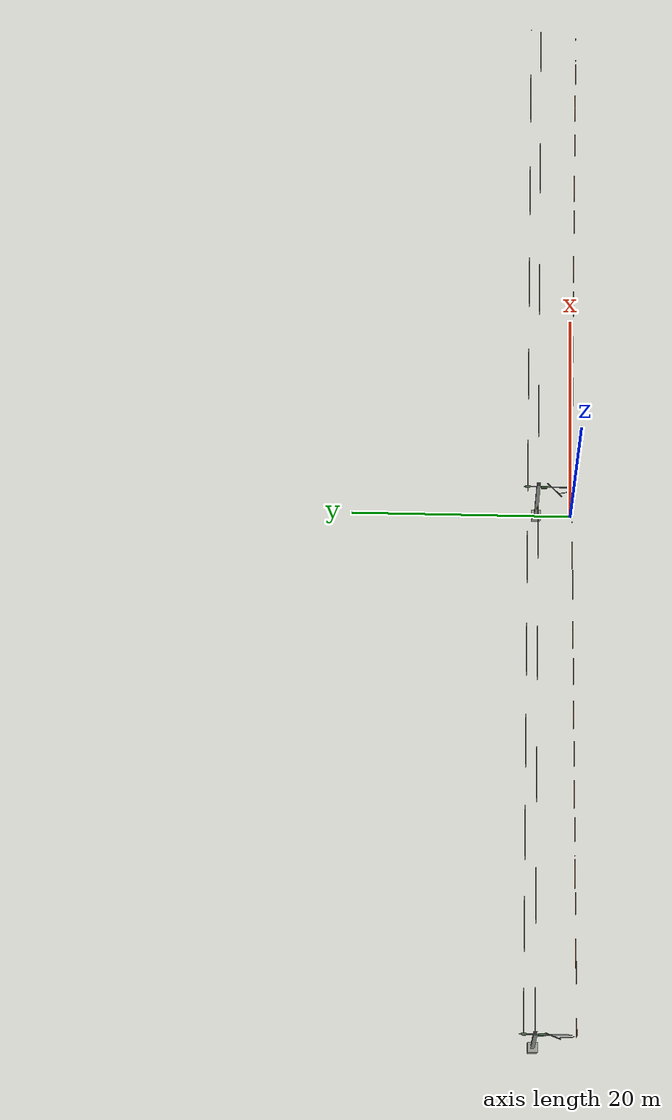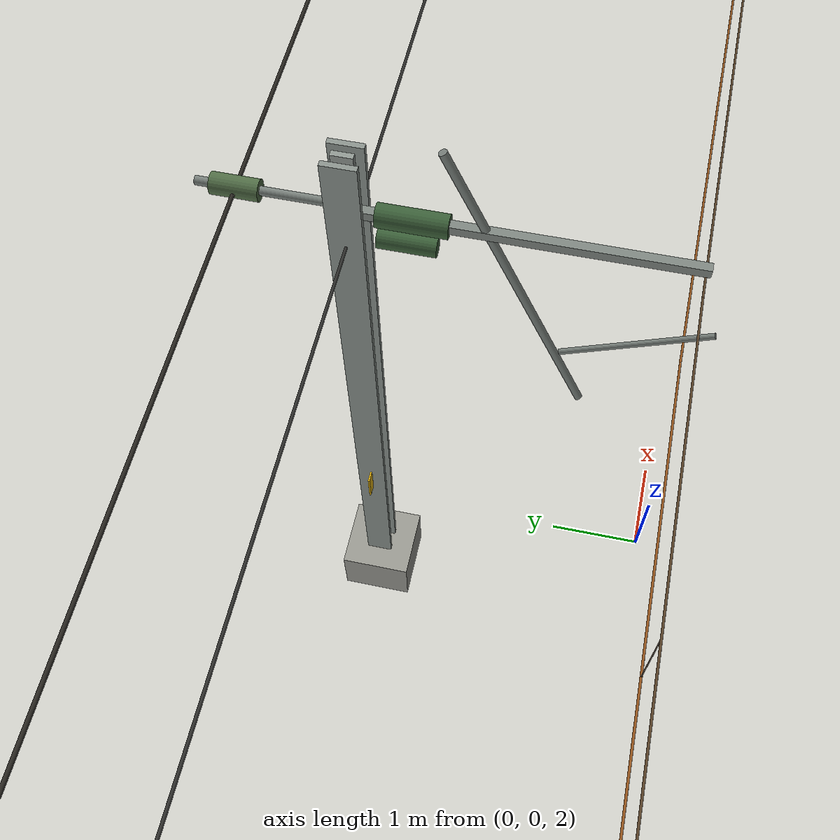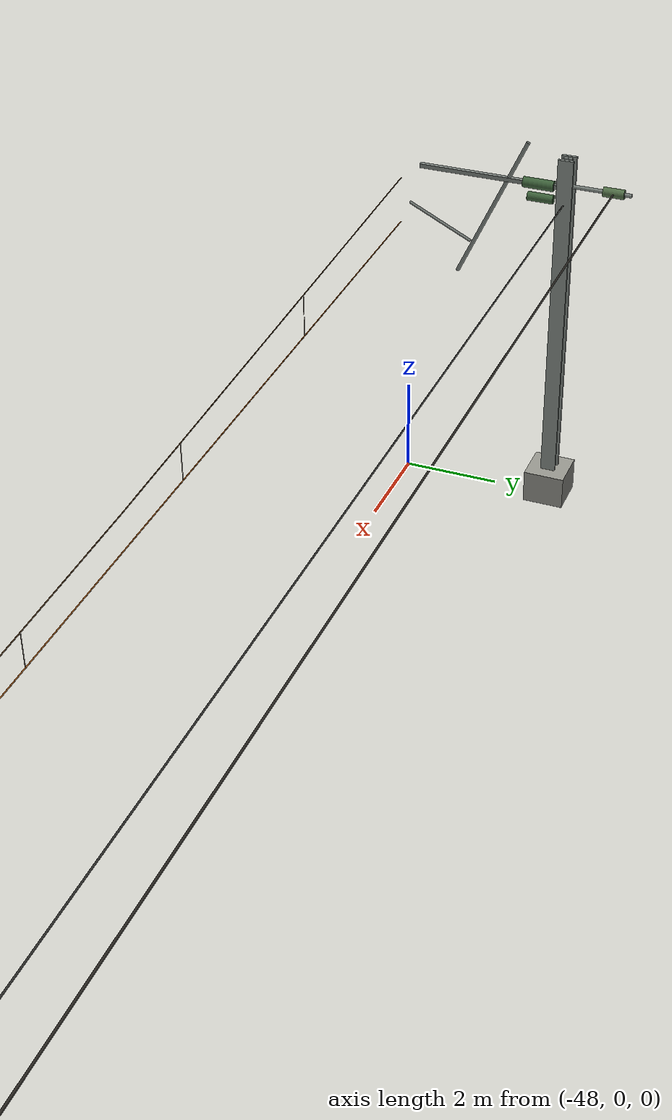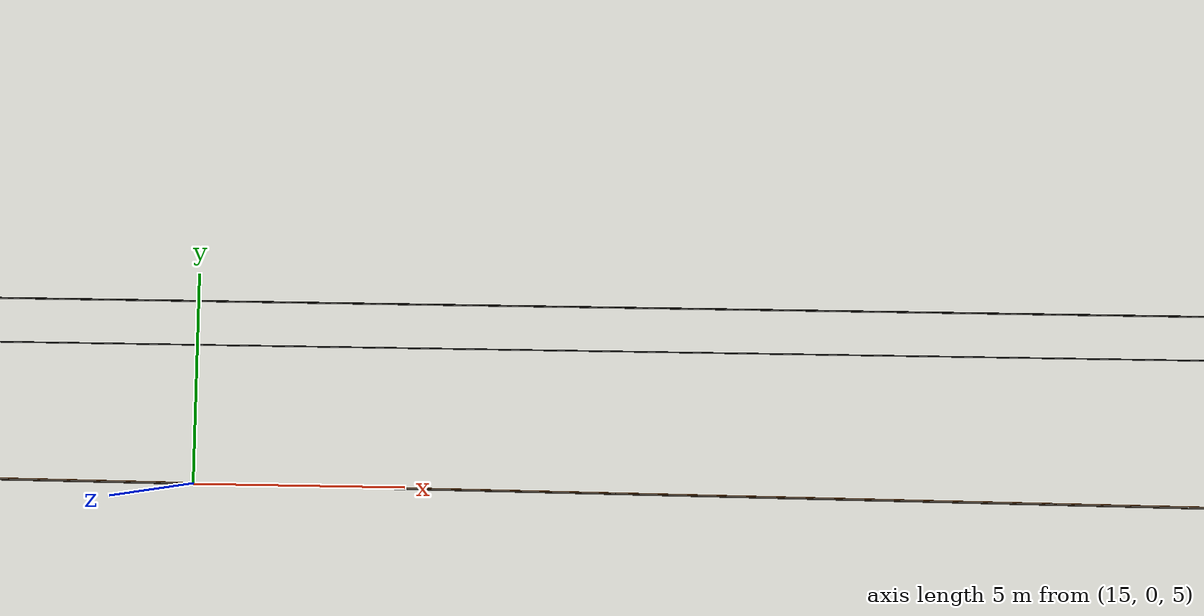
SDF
<?xml version="1.0"?>
<sdf version="1.9">
  <model name="catenary_span_96m">
    <static>true</static>
    <plugin filename="gz-sim-label-system" name="gz::sim::systems::Label"><label>30</label></plugin>
    <include><uri>model://catenary_mast</uri><name>mast_left</name><pose>-48 0 0 0 0 0</pose></include>
    <include><uri>model://catenary_mast</uri><name>mast_centre</name><pose>0 0 0 0 0 0</pose></include>
    <link name="conductors">
      <!-- Contact wire: rail top 0.612 m + KR E-03160 nominal 5.200 m. -->
      <visual name="cw_a1"><pose>-42 -0.150 5.812 0 1.570796 0.008333</pose><geometry><cylinder><radius>0.011</radius><length>12.0004</length></cylinder></geometry><material><diffuse>0.58 0.33 0.11 1</diffuse><specular>0.55 0.40 0.20 1</specular></material></visual>
      <visual name="cw_a2"><pose>-30 -0.050 5.812 0 1.570796 0.008333</pose><geometry><cylinder><radius>0.011</radius><length>12.0004</length></cylinder></geometry><material><diffuse>0.58 0.33 0.11 1</diffuse></material></visual>
      <visual name="cw_a3"><pose>-18 0.050 5.812 0 1.570796 0.008333</pose><geometry><cylinder><radius>0.011</radius><length>12.0004</length></cylinder></geometry><material><diffuse>0.58 0.33 0.11 1</diffuse></material></visual>
      <visual name="cw_a4"><pose>-6 0.150 5.812 0 1.570796 0.008333</pose><geometry><cylinder><radius>0.011</radius><length>12.0004</length></cylinder></geometry><material><diffuse>0.58 0.33 0.11 1</diffuse></material></visual>
      <visual name="cw_b1"><pose>6 0.150 5.812 0 1.570796 -0.008333</pose><geometry><cylinder><radius>0.011</radius><length>12.0004</length></cylinder></geometry><material><diffuse>0.58 0.33 0.11 1</diffuse></material></visual>
      <visual name="cw_b2"><pose>18 0.050 5.812 0 1.570796 -0.008333</pose><geometry><cylinder><radius>0.011</radius><length>12.0004</length></cylinder></geometry><material><diffuse>0.58 0.33 0.11 1</diffuse></material></visual>
      <visual name="cw_b3"><pose>30 -0.050 5.812 0 1.570796 -0.008333</pose><geometry><cylinder><radius>0.011</radius><length>12.0004</length></cylinder></geometry><material><diffuse>0.58 0.33 0.11 1</diffuse></material></visual>
      <visual name="cw_b4"><pose>42 -0.150 5.812 0 1.570796 -0.008333</pose><geometry><cylinder><radius>0.011</radius><length>12.0004</length></cylinder></geometry><material><diffuse>0.58 0.33 0.11 1</diffuse></material></visual>

      <!-- Messenger wire approximates the real parabolic sag of a 0.96 m system. -->
      <visual name="mw_a1"><pose>-42 -0.150 6.623 0 1.59567 0.008333</pose><geometry><cylinder><radius>0.010</radius><length>12.004</length></cylinder></geometry><material><diffuse>0.34 0.25 0.15 1</diffuse></material></visual>
      <visual name="mw_a2"><pose>-30 -0.050 6.424 0 1.57909 0.008333</pose><geometry><cylinder><radius>0.010</radius><length>12.001</length></cylinder></geometry><material><diffuse>0.34 0.25 0.15 1</diffuse></material></visual>
      <visual name="mw_a3"><pose>-18 0.050 6.424 0 1.56250 0.008333</pose><geometry><cylinder><radius>0.010</radius><length>12.001</length></cylinder></geometry><material><diffuse>0.34 0.25 0.15 1</diffuse></material></visual>
      <visual name="mw_a4"><pose>-6 0.150 6.623 0 1.54592 0.008333</pose><geometry><cylinder><radius>0.010</radius><length>12.004</length></cylinder></geometry><material><diffuse>0.34 0.25 0.15 1</diffuse></material></visual>
      <visual name="mw_b1"><pose>6 0.150 6.623 0 1.59567 -0.008333</pose><geometry><cylinder><radius>0.010</radius><length>12.004</length></cylinder></geometry><material><diffuse>0.34 0.25 0.15 1</diffuse></material></visual>
      <visual name="mw_b2"><pose>18 0.050 6.424 0 1.57909 -0.008333</pose><geometry><cylinder><radius>0.010</radius><length>12.001</length></cylinder></geometry><material><diffuse>0.34 0.25 0.15 1</diffuse></material></visual>
      <visual name="mw_b3"><pose>30 -0.050 6.424 0 1.56250 -0.008333</pose><geometry><cylinder><radius>0.010</radius><length>12.001</length></cylinder></geometry><material><diffuse>0.34 0.25 0.15 1</diffuse></material></visual>
      <visual name="mw_b4"><pose>42 -0.150 6.623 0 1.54592 -0.008333</pose><geometry><cylinder><radius>0.010</radius><length>12.004</length></cylinder></geometry><material><diffuse>0.34 0.25 0.15 1</diffuse></material></visual>

      <!-- Droppers, nominally 5 m apart. Length follows the messenger sag. -->
      <visual name="da01"><pose>-43 -0.158 6.218 0 0 0</pose><geometry><cylinder><radius>0.006</radius><length>0.812</length></cylinder></geometry><material><diffuse>0.26 0.22 0.17 1</diffuse></material></visual>
      <visual name="da02"><pose>-38 -0.117 6.161 0 0 0</pose><geometry><cylinder><radius>0.006</radius><length>0.697</length></cylinder></geometry><material><diffuse>0.26 0.22 0.17 1</diffuse></material></visual>
      <visual name="da03"><pose>-33 -0.075 6.121 0 0 0</pose><geometry><cylinder><radius>0.006</radius><length>0.618</length></cylinder></geometry><material><diffuse>0.26 0.22 0.17 1</diffuse></material></visual>
      <visual name="da04"><pose>-28 -0.033 6.099 0 0 0</pose><geometry><cylinder><radius>0.006</radius><length>0.573</length></cylinder></geometry><material><diffuse>0.26 0.22 0.17 1</diffuse></material></visual>
      <visual name="da05"><pose>-23 0.008 6.093 0 0 0</pose><geometry><cylinder><radius>0.006</radius><length>0.563</length></cylinder></geometry><material><diffuse>0.26 0.22 0.17 1</diffuse></material></visual>
      <visual name="da06"><pose>-18 0.050 6.105 0 0 0</pose><geometry><cylinder><radius>0.006</radius><length>0.587</length></cylinder></geometry><material><diffuse>0.26 0.22 0.17 1</diffuse></material></visual>
      <visual name="da07"><pose>-13 0.092 6.135 0 0 0</pose><geometry><cylinder><radius>0.006</radius><length>0.646</length></cylinder></geometry><material><diffuse>0.26 0.22 0.17 1</diffuse></material></visual>
      <visual name="da08"><pose>-8 0.133 6.182 0 0 0</pose><geometry><cylinder><radius>0.006</radius><length>0.739</length></cylinder></geometry><material><diffuse>0.26 0.22 0.17 1</diffuse></material></visual>
      <visual name="da09"><pose>-3 0.175 6.245 0 0 0</pose><geometry><cylinder><radius>0.006</radius><length>0.867</length></cylinder></geometry><material><diffuse>0.26 0.22 0.17 1</diffuse></material></visual>
      <visual name="db01"><pose>5 0.158 6.218 0 0 0</pose><geometry><cylinder><radius>0.006</radius><length>0.812</length></cylinder></geometry><material><diffuse>0.26 0.22 0.17 1</diffuse></material></visual>
      <visual name="db02"><pose>10 0.117 6.161 0 0 0</pose><geometry><cylinder><radius>0.006</radius><length>0.697</length></cylinder></geometry><material><diffuse>0.26 0.22 0.17 1</diffuse></material></visual>
      <visual name="db03"><pose>15 0.075 6.121 0 0 0</pose><geometry><cylinder><radius>0.006</radius><length>0.618</length></cylinder></geometry><material><diffuse>0.26 0.22 0.17 1</diffuse></material></visual>
      <visual name="db04"><pose>20 0.033 6.099 0 0 0</pose><geometry><cylinder><radius>0.006</radius><length>0.573</length></cylinder></geometry><material><diffuse>0.26 0.22 0.17 1</diffuse></material></visual>
      <visual name="db05"><pose>25 -0.008 6.093 0 0 0</pose><geometry><cylinder><radius>0.006</radius><length>0.563</length></cylinder></geometry><material><diffuse>0.26 0.22 0.17 1</diffuse></material></visual>
      <visual name="db06"><pose>30 -0.050 6.105 0 0 0</pose><geometry><cylinder><radius>0.006</radius><length>0.587</length></cylinder></geometry><material><diffuse>0.26 0.22 0.17 1</diffuse></material></visual>
      <visual name="db07"><pose>35 -0.092 6.135 0 0 0</pose><geometry><cylinder><radius>0.006</radius><length>0.646</length></cylinder></geometry><material><diffuse>0.26 0.22 0.17 1</diffuse></material></visual>
      <visual name="db08"><pose>40 -0.133 6.182 0 0 0</pose><geometry><cylinder><radius>0.006</radius><length>0.739</length></cylinder></geometry><material><diffuse>0.26 0.22 0.17 1</diffuse></material></visual>
      <visual name="db09"><pose>45 -0.175 6.245 0 0 0</pose><geometry><cylinder><radius>0.006</radius><length>0.867</length></cylinder></geometry><material><diffuse>0.26 0.22 0.17 1</diffuse></material></visual>

      <visual name="feeder"><pose>0 4.15 7.18 0 1.570796 0</pose><geometry><cylinder><radius>0.018</radius><length>96</length></cylinder></geometry><material><diffuse>0.16 0.15 0.13 1</diffuse></material></visual>
      <visual name="protective_wire"><pose>0 3.20 6.82 0 1.570796 0</pose><geometry><cylinder><radius>0.014</radius><length>96</length></cylinder></geometry><material><diffuse>0.18 0.18 0.17 1</diffuse></material></visual>
    </link>
  </model>
</sdf>

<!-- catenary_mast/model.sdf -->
<sdf version="1.9">
  <model name="catenary_mast">
    <static>true</static>
    <plugin filename="gz-sim-label-system" name="gz::sim::systems::Label"><label>30</label></plugin>
    <link name="mast">
      <collision name="foundation_collision"><pose>0 3.20 0.35 0 0 0</pose><geometry><box><size>0.85 0.85 0.70</size></box></geometry></collision>
      <visual name="foundation"><pose>0 3.20 0.35 0 0 0</pose><geometry><box><size>0.85 0.85 0.70</size></box></geometry><material><ambient>0.40 0.40 0.38 1</ambient><diffuse>0.58 0.58 0.55 1</diffuse></material></visual>

      <!-- H-section galvanised steel mast -->
      <visual name="mast_web"><pose>0 3.20 4.05 0 0 0</pose><geometry><box><size>0.055 0.19 7.40</size></box></geometry><material><ambient>0.35 0.37 0.36 1</ambient><diffuse>0.55 0.58 0.56 1</diffuse><specular>0.35 0.35 0.35 1</specular></material></visual>
      <visual name="mast_flange_a"><pose>0.12 3.20 4.05 0 0 0</pose><geometry><box><size>0.055 0.31 7.40</size></box></geometry><material><diffuse>0.53 0.56 0.54 1</diffuse></material></visual>
      <visual name="mast_flange_b"><pose>-0.12 3.20 4.05 0 0 0</pose><geometry><box><size>0.055 0.31 7.40</size></box></geometry><material><diffuse>0.53 0.56 0.54 1</diffuse></material></visual>

      <!-- Cantilever and registration assembly -->
      <visual name="upper_arm"><pose>0 1.70 7.12 0 0 0</pose><geometry><box><size>0.085 3.0 0.085</size></box></geometry><material><diffuse>0.48 0.51 0.49 1</diffuse></material></visual>
      <visual name="diagonal_arm"><pose>0 1.72 6.45 -0.43 0 0</pose><geometry><cylinder><radius>0.038</radius><length>3.28</length></cylinder></geometry><material><diffuse>0.46 0.49 0.47 1</diffuse></material></visual>
      <visual name="upper_insulator"><pose>0 2.65 7.12 1.570796 0 0</pose><geometry><cylinder><radius>0.105</radius><length>0.62</length></cylinder></geometry><material><diffuse>0.23 0.37 0.22 1</diffuse><specular>0.45 0.45 0.45 1</specular></material></visual>
      <visual name="lower_insulator"><pose>0 2.70 6.84 1.570796 0 0</pose><geometry><cylinder><radius>0.090</radius><length>0.52</length></cylinder></geometry><material><diffuse>0.23 0.37 0.22 1</diffuse><specular>0.45 0.45 0.45 1</specular></material></visual>
      <visual name="steady_arm"><pose>0 0.64 5.97 1.12 0 0</pose><geometry><cylinder><radius>0.028</radius><length>1.45</length></cylinder></geometry><material><diffuse>0.46 0.49 0.47 1</diffuse></material></visual>

      <!-- Feeder support and safety marker -->
      <visual name="feeder_bracket"><pose>0 3.85 7.18 1.570796 0 0</pose><geometry><cylinder><radius>0.040</radius><length>1.30</length></cylinder></geometry><material><diffuse>0.47 0.50 0.48 1</diffuse></material></visual>
      <visual name="feeder_insulator"><pose>0 4.15 7.18 1.570796 0 0</pose><geometry><cylinder><radius>0.095</radius><length>0.42</length></cylinder></geometry><material><diffuse>0.31 0.42 0.27 1</diffuse></material></visual>
      <visual name="warning_plate"><pose>-0.151 3.20 2.65 0 1.570796 0</pose><geometry><box><size>0.36 0.018 0.24</size></box></geometry><material><ambient>0.75 0.58 0.04 1</ambient><diffuse>0.92 0.72 0.06 1</diffuse></material></visual>
    </link>
  </model>
</sdf>
